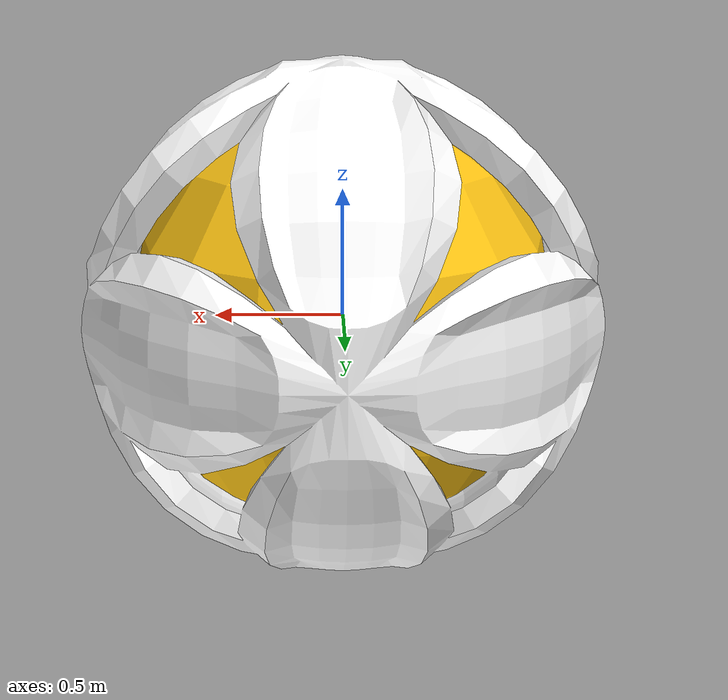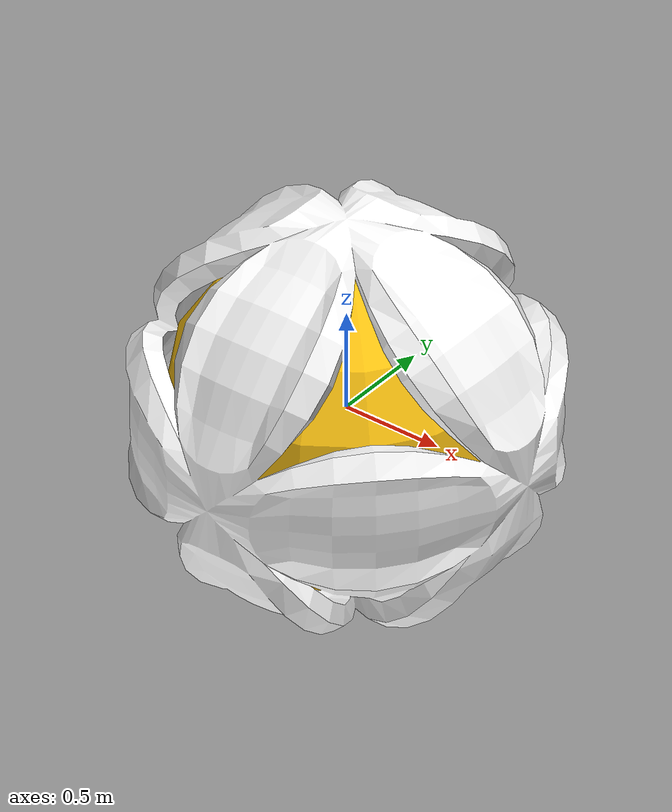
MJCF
<!-- 滚球障碍物模型：用于场景中的滚动球碰撞体。 -->
<mujoco>
  <!-- 编译器设置：角度单位为弧度，网格目录指向 meshes。 -->
  <compiler angle="radian" assetdir="assets" autolimits="true"/>

  <!-- 资源定义：网格、纹理、材质与高度场。 -->
  <asset>

    <!-- 纹理 -->
    <texture type="2d" colorspace="sRGB" name="ball01" file="ball01.png"/>
    <texture type="2d" colorspace="linear" name="ball01_ro" file="ball01_ro.png"/>

    <!-- 材质 -->
    <material name="MI_ROLLBALL" rgba="1 1 1 1" reflectance="0.5" metallic="0.20000000298023224" roughness="1.0">
      <layer texture="ball01" role="rgb"/>
      <layer texture="ball01_ro" role="orm"/>
    </material>
    <material name="MI_gold" rgba="1.0 0.7726222276687622 0.06890170276165009 1.0" reflectance="0.5" metallic="1.0" roughness="0.15000000596046448"/>

    <!-- 视觉网格 -->
    <mesh class="visual" name="V_ROLLBALL" file="V_ROLLBALL.obj"/>
    <mesh class="visual" name="V_ROLLBALL_in" file="V_ROLLBALL_in.obj"/>

    <!-- 碰撞网格 -->
  </asset>

  <!-- 默认属性模板：几何、关节、电机共享参数。 -->
  <default>
      <default class="visual">
        <geom type="mesh" contype="0" conaffinity="0" group="2" density="0"/>
      </default>
      <default class="collision">
        <geom type="mesh" rgba="1 1 1 1" group="3" contype="1" conaffinity="1"/>
          <default class="C_ROLLBALL">
            <geom type="sphere" rgba="1 1 1 1" size="0.375" quat="1.0 0.0 0.0 0.0" pos="0.0 0.0 0.0" density="1000.0"/>
          </default>
      </default>
  </default>

  <!-- 世界坐标系实体：滚球障碍物主体。 -->
  <worldbody>

    <!-- 视觉场景主体或碰撞代理体。 -->
    <body name="B_body" pos="0.0 0.0 0.0" quat="1.0 0.0 0.0 0.0">
      <geom class="C_ROLLBALL"/>
      <geom class="visual" mesh="V_ROLLBALL" pos="0.0 0.0 0.0" quat="0.5000000596046448 -0.5 0.5 0.4999999403953552" material="MI_ROLLBALL"/>
      <geom class="visual" mesh="V_ROLLBALL_in" pos="0.0 0.0 0.0" quat="1.0 0.0 0.0 0.0" material="MI_gold"/>
    </body>
  </worldbody>
  <!-- 接触规则：自定义碰撞排除或包含。 -->
  <contact>
  </contact>
  <!-- 等式约束配置。 -->
  <equality>
  </equality>
  <!-- 肌腱配置。 -->
  <tendon>
  </tendon>
  <!-- 执行器：驱动各关节的力矩电机。 -->
  <actuator>
  </actuator>
</mujoco>
